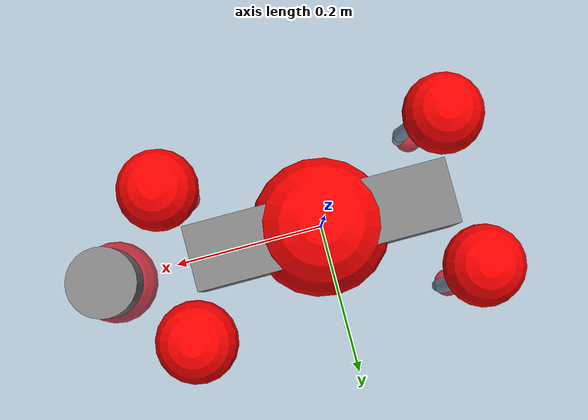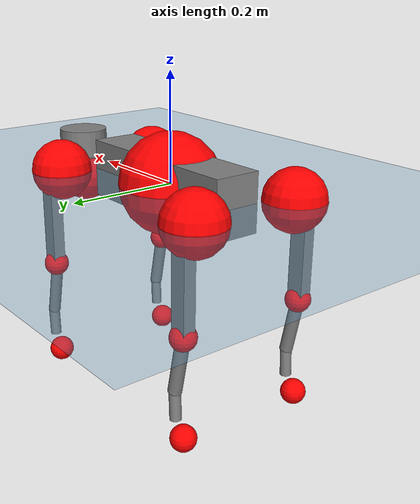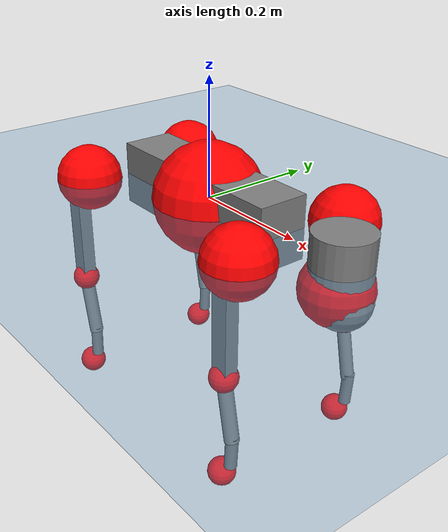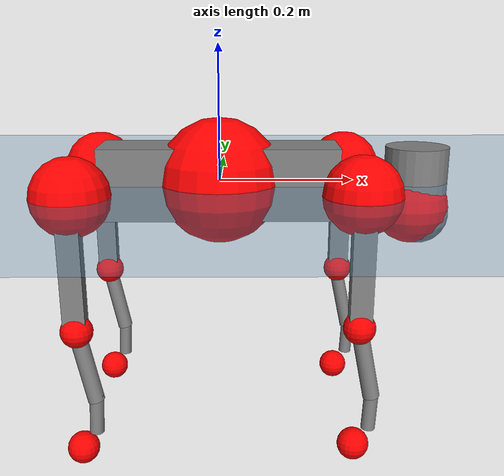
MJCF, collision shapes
<mujoco model="go2">
  <compiler angle="radian" assetdir="assets" balanceinertia="true" inertiafromgeom="false"/>

  <option timestep="0.005" density="1.2" viscosity="2e-05"/>

  <size nkey="1"/>

  <visual>
    <quality shadowsize="8192"/>
    <map shadowclip="0.5"/>
  </visual>

  <default>
    <default class="/">
      <geom contype="0" conaffinity="0" group="1" solref="-1000 -80"/>
      <site size="0.01 0.005 0.005" group="5"/>
      <general forcelimited="true" biastype="affine" gainprm="20" biasprm="0 -20 -0.5"/>
      <default class="go2">
        <joint armature="0.01" damping="0.01" frictionloss="0.2"/>
        <geom condim="1" margin="0.001"/>
        <default class="visual">
          <geom type="mesh" group="2"/>
        </default>
        <default class="collision">
          <geom group="3"/>
          <default class="foot">
            <geom size="0.022 0 0" condim="6" priority="1" friction="0.8 0.02 0.01" solimp="0.015 1 0.022"/>
          </default>
        </default>
        <default class="reward_collision_sphere">
          <geom group="5" rgba="1 0 0 1"/>
        </default>
      </default>
    </default>
  </default>

  <asset>
    <texture type="skybox" colorspace="auto" name="//unnamed_texture_0" builtin="gradient" rgb1="0.95 0.95 0.95" rgb2="0.95 0.95 0.95" width="100" height="600"/>
    <texture type="2d" colorspace="auto" name="texplane" builtin="checker" rgb1="0.345 0.575 0.748" rgb2="0.345 0.575 0.748" markrgb="1 1 1" width="512" height="512"/>
    <material name="MatPlane" class="/" texture="texplane" texuniform="true" texrepeat="2 2" specular="0.9"/>
    <material name="metal" class="/" rgba="0.9 0.95 0.95 1"/>
    <material name="black" class="/" rgba="0 0 0 1"/>
    <material name="white" class="/"/>
    <material name="gray" class="/" rgba="0.671705 0.692426 0.77427 1"/>
    <mesh name="base_0" class="/" file="base_0.obj"/>
    <mesh name="base_1" class="/" file="base_1.obj"/>
    <mesh name="base_2" class="/" file="base_2.obj"/>
    <mesh name="base_3" class="/" file="base_3.obj"/>
    <mesh name="base_4" class="/" file="base_4.obj"/>
    <mesh name="hip_0" class="/" file="hip_0.obj"/>
    <mesh name="hip_1" class="/" file="hip_1.obj"/>
    <mesh name="thigh_0" class="/" file="thigh_0.obj"/>
    <mesh name="thigh_1" class="/" file="thigh_1.obj"/>
    <mesh name="thigh_mirror_0" class="/" file="thigh_mirror_0.obj"/>
    <mesh name="thigh_mirror_1" class="/" file="thigh_mirror_1.obj"/>
    <mesh name="calf_0" class="/" file="calf_0.obj"/>
    <mesh name="calf_1" class="/" file="calf_1.obj"/>
    <mesh name="calf_mirror_0" class="/" file="calf_mirror_0.obj"/>
    <mesh name="calf_mirror_1" class="/" file="calf_mirror_1.obj"/>
    <mesh name="foot" class="/" file="foot.obj"/>
  </asset>

  <worldbody>
    <geom name="floor" class="/" size="100 100 0.125" type="plane" group="0" material="MatPlane"/>
    <light name="toplight_shadow" class="/" pos="0 0 5" dir="0.0990148 0.0990148 -0.990148" type="directional" ambient="0.04 0.04 0.04" diffuse="0.55 0.55 0.55" specular="0.12 0.12 0.12"/>
    <light name="toplight_fill" class="/" pos="0 0 5" dir="0.0990148 0.0990148 -0.990148" type="directional" castshadow="false" ambient="0.04 0.04 0.04" diffuse="0.3 0.3 0.3" specular="0.08 0.08 0.08"/>
    <body name="trunk" childclass="go2" pos="-1.13921e-06 -0.000234038 0.000310662" quat="1 -7.17388e-05 0.000226007 -4.91979e-05">
      <inertial pos="0.0216665 8.61292e-05 -0.00480585" quat="-0.00392312 0.714718 -0.00320578 0.699394" mass="5.71785" diaginertia="0.127761 0.0613641 0.0127385"/>
      <joint name="//unnamed_joint_0" type="free" armature="0" damping="0" frictionloss="0"/>
      <geom name="//unnamed_geom_1" class="visual" material="black" mesh="base_0"/>
      <geom name="//unnamed_geom_2" class="visual" material="black" mesh="base_1"/>
      <geom name="//unnamed_geom_3" class="visual" material="black" mesh="base_2"/>
      <geom name="//unnamed_geom_4" class="visual" material="white" mesh="base_3"/>
      <geom name="//unnamed_geom_5" class="visual" material="gray" mesh="base_4"/>
      <geom name="trunk_1" class="collision" size="0.177266 0.0440573 0.0537169" type="box"/>
      <geom name="trunk_2" class="collision" size="0.0471201 0.0424081" pos="0.295597 0 0.0087718" type="cylinder"/>
      <geom name="trunk_3" class="collision" size="0.0442929" pos="0.303895 0 -0.0526308"/>
      <geom name="//unnamed_geom_9" class="reward_collision_sphere" size="0.0942402"/>
      <geom name="//unnamed_geom_10" class="reward_collision_sphere" size="0.0565441" pos="0.290411 0 -0.0394731"/>
      <site name="imu" pos="-0.0245594 -0.000701063 0.0342123" size="0.00942402"/>
      <camera name="track" pos="0 -1.82569 0" quat="0.707107 0.707107 0 0" mode="trackcom"/>
      <camera name="ego_camera" pos="0.323601 0 0.0394731" quat="-0.5 -0.5 0.5 0.5"/>
      <body name="FL_hip" pos="0.199963 0.0432135 0.00119042" quat="1 1.56722e-05 3.67919e-05 -4.13058e-05">
        <inertial pos="-0.0056927 0.00221497 -0.000368416" quat="0.496992 0.499556 0.505035 0.498379" mass="0.564501" diaginertia="0.00105563 0.000381898 0.000249491"/>
        <joint name="FL_hip_joint" pos="0 0 0" axis="0.999942 -0.0105162 0.00222933" range="-1.04194 1.04942" armature="0.00917269" damping="0.00652623" frictionloss="0.181994"/>
        <geom name="//unnamed_geom_11" class="visual" material="metal" mesh="hip_0"/>
        <geom name="//unnamed_geom_12" class="visual" material="gray" mesh="hip_1"/>
        <geom name="//unnamed_geom_13" class="collision" size="0.0433505 0.018848" pos="0 0.0730275 0" quat="0.707107 0.707107 0 0" type="cylinder"/>
        <geom name="//unnamed_geom_14" class="reward_collision_sphere" size="0.0565441" pos="0 0.063899 0"/>
        <body name="FL_thigh" pos="0.00041248 0.0874211 0.00108182" quat="1 -0.000147404 -0.000323004 8.00106e-05">
          <inertial pos="-0.00392001 -0.0201416 -0.0292706" quat="0.830415 0.0839586 -0.0226053 0.550319" mass="0.960838" diaginertia="0.00714269 0.00369894 0.000455759"/>
          <joint name="FL_thigh_joint" pos="0 0 0" axis="0.00252637 0.999996 -0.000819634" stiffness="0.00210334" range="-1.57702 3.49108" armature="0.00922531" damping="0.0109235" frictionloss="0.196824"/>
          <geom name="//unnamed_geom_15" class="visual" material="metal" mesh="thigh_0"/>
          <geom name="//unnamed_geom_16" class="visual" material="gray" mesh="thigh_1"/>
          <geom name="//unnamed_geom_17" class="collision" size="0.100366 0.0115444 0.0160208" pos="0 0 -0.0934197" quat="0.707107 0 0.707107 0" type="box"/>
          <body name="FL_calf" pos="-0.000443567 -0.00104966 -0.186832" quat="1 2.97762e-05 -0.000421491 0.000142005">
            <inertial pos="0.00592501 -0.000974199 -0.123222" quat="0.711283 0.000131542 -0.00413796 0.702894" mass="0.197416" diaginertia="0.00178304 0.000915602 2.73894e-05"/>
            <joint name="FL_calf_joint" pos="0 0 0" axis="-0.00224309 0.999993 0.00300514" stiffness="0.00158218" range="-2.72652 -0.841767" armature="0.00941313" damping="0.00747957" frictionloss="0.186676"/>
            <geom name="//unnamed_geom_18" class="visual" material="gray" mesh="calf_0"/>
            <geom name="//unnamed_geom_19" class="visual" material="black" mesh="calf_1"/>
            <geom name="FL_calf0" class="collision" size="0.0113088 0.0565441" pos="0.00829746 0 -0.0526308" quat="0.994493 0 -0.104807 0" type="cylinder"/>
            <geom name="//unnamed_geom_21" class="collision" size="0.0103664 0.0306281" pos="0.0207437 0 -0.129823" quat="0.999688 0 0.0249974 0" type="cylinder"/>
            <geom name="//unnamed_geom_22" class="visual" pos="0 0 -0.186839" quat="1 0 0 0" material="black" mesh="foot"/>
            <geom name="FL_foot" class="foot" size="0.0166956" pos="-0.00207437 0 -0.186839"/>
            <geom name="//unnamed_geom_24" class="reward_collision_sphere" size="0.0235601"/>
            <geom name="//unnamed_geom_25" class="reward_collision_sphere" size="0.0235601" pos="-0.00207437 0 -0.186839"/>
            <site name="FL_foot" class="foot" pos="-0.00207437 0 -0.186839" size="0.00942402"/>
          </body>
        </body>
      </body>
      <body name="FR_hip" pos="0.200759 -0.0408918 -6.84952e-05" quat="1 -6.99072e-05 -1.92721e-05 5.817e-05">
        <inertial pos="-0.00460773 -0.00131072 -0.00135302" quat="0.500917 0.503 0.501102 0.494944" mass="0.572237" diaginertia="0.00107132 0.00038428 0.000250516"/>
        <joint name="FR_hip_joint" pos="0 0 0" axis="0.999996 -0.00260409 0.00145441" stiffness="0.00579785" range="-1.05567 1.04505" armature="0.00939967" damping="0.0139425" frictionloss="0.191862"/>
        <geom name="//unnamed_geom_26" class="visual" pos="0 3.10681e-10 1.33257e-08" quat="4.63268e-05 1 0 0" material="metal" mesh="hip_0"/>
        <geom name="//unnamed_geom_27" class="visual" pos="0 5.0365e-10 -3.29596e-08" quat="4.63268e-05 1 0 0" material="gray" mesh="hip_1"/>
        <geom name="//unnamed_geom_28" class="collision" size="0.0433505 0.018848" pos="0 -0.0730275 0" quat="0.707107 0.707107 0 0" type="cylinder"/>
        <geom name="//unnamed_geom_29" class="reward_collision_sphere" size="0.0565441" pos="0 -0.063899 0"/>
        <body name="FR_thigh" pos="0.000355521 -0.086601 -0.000258443" quat="1 -3.58349e-07 2.69435e-05 4.47652e-05">
          <inertial pos="-0.0030838 0.0215918 -0.028265" quat="0.551806 -0.0203628 0.0851883 0.82936" mass="0.965922" diaginertia="0.00710727 0.00372194 0.000456825"/>
          <joint name="FR_thigh_joint" pos="0 0 0" axis="-0.00478221 -0.999979 -0.00426604" range="-3.49235 1.55587" armature="0.00923806" damping="0.0138048" frictionloss="0.193028"/>
          <geom name="//unnamed_geom_30" class="visual" material="metal" mesh="thigh_mirror_0"/>
          <geom name="//unnamed_geom_31" class="visual" material="gray" mesh="thigh_mirror_1"/>
          <geom name="//unnamed_geom_32" class="collision" size="0.100366 0.0115444 0.0160208" pos="0 0 -0.0934197" quat="0.707107 0 0.707107 0" type="box"/>
          <body name="FR_calf" pos="-0.000404329 -0.00048375 -0.186862" quat="1 -9.27838e-05 -2.29371e-05 0.000343984">
            <inertial pos="0.00770829 0.00156263 -0.124769" quat="0.702836 -0.0058342 0.00281565 0.711322" mass="0.202183" diaginertia="0.00176578 0.000922198 2.77594e-05"/>
            <joint name="FR_calf_joint" pos="0 0 0" axis="0.000904376 -1 3.83142e-05" range="0.826108 2.72707" armature="0.00949411" damping="0.00957168" frictionloss="0.187608"/>
            <geom name="//unnamed_geom_33" class="visual" material="gray" mesh="calf_mirror_0"/>
            <geom name="//unnamed_geom_34" class="visual" material="black" mesh="calf_mirror_1"/>
            <geom name="FR_calf0" class="collision" size="0.0122512 0.0565441" pos="0.0103718 0 -0.0526308" quat="0.995004 0 -0.0998334 0" type="cylinder"/>
            <geom name="//unnamed_geom_36" class="collision" size="0.0103664 0.0306281" pos="0.0207437 0 -0.129823" quat="0.999688 0 0.0249974 0" type="cylinder"/>
            <geom name="//unnamed_geom_37" class="visual" pos="0 0 -0.186839" quat="1 0 0 0" material="black" mesh="foot"/>
            <geom name="FR_foot" class="foot" size="0.0220741" pos="-0.00207437 0 -0.186839"/>
            <geom name="//unnamed_geom_39" class="reward_collision_sphere" size="0.0235601"/>
            <geom name="//unnamed_geom_40" class="reward_collision_sphere" size="0.0235601" pos="-0.00207437 0 -0.186839"/>
            <site name="FR_foot" class="foot" pos="-0.00207437 0 -0.186839" size="0.00942402"/>
          </body>
        </body>
      </body>
      <body name="RL_hip" pos="-0.199472 0.0428661 0.000516174" quat="1 0.000227265 0.00032499 0.000225979">
        <inertial pos="0.00597039 0.00123732 1.06917e-05" quat="0.505521 0.497693 0.496934 0.499807" mass="0.573132" diaginertia="0.00105709 0.000378878 0.000250375"/>
        <joint name="RL_hip_joint" pos="0 0 0" axis="-0.999756 0.0219302 -0.00277134" stiffness="0.000472863" range="-1.06455 1.04573" armature="0.00943942" damping="0.0140212" frictionloss="0.188186"/>
        <geom name="//unnamed_geom_41" class="visual" pos="-1.39388e-09 0 -2.73232e-07" quat="4.63268e-05 0 1 0" material="metal" mesh="hip_0"/>
        <geom name="//unnamed_geom_42" class="visual" pos="-2.25964e-09 0 -2.42318e-07" quat="4.63268e-05 0 1 0" material="gray" mesh="hip_1"/>
        <geom name="//unnamed_geom_43" class="collision" size="0.0433505 0.018848" pos="0 0.0730275 0" quat="0.707107 0.707107 0 0" type="cylinder"/>
        <geom name="//unnamed_geom_44" class="reward_collision_sphere" size="0.0565441" pos="0 0.063899 0"/>
        <body name="RL_thigh" pos="-0.00112288 0.0858989 0.00116296" quat="1 -5.61631e-05 -5.33131e-05 -3.72406e-05">
          <inertial pos="-0.00326265 -0.0195203 -0.0290643" quat="0.829411 0.0864164 -0.0174088 0.55164" mass="0.960639" diaginertia="0.00714826 0.0036523 0.000446748"/>
          <joint name="RL_thigh_joint" pos="0 0 0" axis="-0.00131199 0.999999 -0.000360079" range="-0.539787 4.51997" armature="0.00953012" damping="0.00880363" frictionloss="0.185716"/>
          <geom name="//unnamed_geom_45" class="visual" material="metal" mesh="thigh_0"/>
          <geom name="//unnamed_geom_46" class="visual" material="gray" mesh="thigh_1"/>
          <geom name="//unnamed_geom_47" class="collision" size="0.100366 0.0115444 0.0160208" pos="0 0 -0.0934197" quat="0.707107 0 0.707107 0" type="box"/>
          <body name="RL_calf" pos="0.000984941 -0.00128552 -0.187589" quat="1 0.000331074 -0.000107068 4.55563e-05">
            <inertial pos="0.0062589 -0.00046638 -0.122739" quat="0.713379 0.00319842 -0.00424409 0.700758" mass="0.201558" diaginertia="0.00178605 0.000933897 2.76167e-05"/>
            <joint name="RL_calf_joint" pos="0 0 0" axis="0.000820901 0.99999 -0.00433185" stiffness="0.00443918" range="-2.71078 -0.819549" armature="0.00967185" damping="0" frictionloss="0.194241"/>
            <geom name="//unnamed_geom_48" class="visual" material="gray" mesh="calf_0"/>
            <geom name="//unnamed_geom_49" class="visual" material="black" mesh="calf_1"/>
            <geom name="RL_calf0" class="collision" size="0.0122512 0.0565441" pos="0.0103718 0 -0.0526308" quat="0.995004 0 -0.0998334 0" type="cylinder"/>
            <geom name="//unnamed_geom_51" class="collision" size="0.0103664 0.0306281" pos="0.0207437 0 -0.129823" quat="0.999688 0 0.0249974 0" type="cylinder"/>
            <geom name="//unnamed_geom_52" class="visual" pos="0 0 -0.186839" quat="1 0 0 0" material="black" mesh="foot"/>
            <geom name="RL_foot" class="foot" size="0.0181798" pos="-0.00207437 0 -0.186839"/>
            <geom name="//unnamed_geom_54" class="reward_collision_sphere" size="0.0235601"/>
            <geom name="//unnamed_geom_55" class="reward_collision_sphere" size="0.0235601" pos="-0.00207437 0 -0.186839"/>
            <site name="RL_foot" class="foot" pos="-0.00207437 0 -0.186839" size="0.00942402"/>
          </body>
        </body>
      </body>
      <body name="RR_hip" pos="-0.201411 -0.0431384 -0.00171274" quat="1 2.22503e-05 1.83911e-05 8.29734e-06">
        <inertial pos="0.0046303 -0.00250114 0.000292293" quat="0.499888 0.496927 0.499706 0.503458" mass="0.56436" diaginertia="0.00104372 0.000371557 0.000245112"/>
        <joint name="RR_hip_joint" pos="0 0 0" axis="-0.99999 0.00196148 -0.00389962" range="-1.04502 1.05185" armature="0.00937517" damping="0.00397476" frictionloss="0.19028"/>
        <geom name="//unnamed_geom_56" class="visual" pos="1.38957e-09 3.10681e-10 -2.86558e-07" quat="2.14617e-09 4.63268e-05 4.63268e-05 -1" material="metal" mesh="hip_0"/>
        <geom name="//unnamed_geom_57" class="visual" pos="2.27029e-09 5.0365e-10 -2.09358e-07" quat="2.14617e-09 4.63268e-05 4.63268e-05 -1" material="gray" mesh="hip_1"/>
        <geom name="//unnamed_geom_58" class="collision" size="0.0433505 0.018848" pos="0 -0.0730275 0" quat="0.707107 0.707107 0 0" type="cylinder"/>
        <geom name="//unnamed_geom_59" class="reward_collision_sphere" size="0.0565441" pos="0 -0.063899 0"/>
        <body name="RR_thigh" pos="0.000267351 -0.0878001 -0.00111763" quat="1 -4.34438e-05 -9.43794e-06 -2.50034e-05">
          <inertial pos="-0.00320825 0.02072 -0.0284832" quat="0.547976 -0.0183568 0.0842769 0.832035" mass="0.960682" diaginertia="0.00717243 0.00369368 0.000463192"/>
          <joint name="RR_thigh_joint" pos="0 0 0" axis="-0.000781609 -0.999997 -0.00233736" stiffness="0.00181691" range="-4.53996 0.523933" armature="0.00928461" damping="0.0159995" frictionloss="0.195327"/>
          <geom name="//unnamed_geom_60" class="visual" material="metal" mesh="thigh_mirror_0"/>
          <geom name="//unnamed_geom_61" class="visual" material="gray" mesh="thigh_mirror_1"/>
          <geom name="//unnamed_geom_62" class="collision" size="0.100366 0.0115444 0.0160208" pos="0 0 -0.0934197" quat="0.707107 0 0.707107 0" type="box"/>
          <body name="RR_calf" pos="0.0010151 -0.000611607 -0.187571" quat="1 -7.85997e-06 4.36584e-05 -5.37564e-06">
            <inertial pos="0.00639844 -0.000119814 -0.123767" quat="0.702989 -0.00351811 0.00241077 0.711188" mass="0.201708" diaginertia="0.00181259 0.000927589 2.76658e-05"/>
            <joint name="RR_calf_joint" pos="0 0 0" axis="0.0025272 -0.999996 -0.00153697" range="0.83682 2.73511" armature="0.00942362" damping="0.00941398" frictionloss="0.19311"/>
            <geom name="//unnamed_geom_63" class="visual" material="gray" mesh="calf_mirror_0"/>
            <geom name="//unnamed_geom_64" class="visual" material="black" mesh="calf_mirror_1"/>
            <geom name="RR_calf0" class="collision" size="0.0122512 0.0565441" pos="0.0103718 0 -0.0526308" quat="0.995004 0 -0.0998334 0" type="cylinder"/>
            <geom name="//unnamed_geom_66" class="collision" size="0.0103664 0.0306281" pos="0.0207437 0 -0.129823" quat="0.999688 0 0.0249974 0" type="cylinder"/>
            <geom name="//unnamed_geom_67" class="visual" pos="0 0 -0.186839" quat="1 0 0 0" material="black" mesh="foot"/>
            <geom name="RR_foot" class="foot" size="0.021895" pos="-0.00207437 0 -0.186839"/>
            <geom name="//unnamed_geom_69" class="reward_collision_sphere" size="0.0235601"/>
            <geom name="//unnamed_geom_70" class="reward_collision_sphere" size="0.0235601" pos="-0.00207437 0 -0.186839"/>
            <site name="RR_foot" class="foot" pos="-0.00207437 0 -0.186839" size="0.00942402"/>
          </body>
        </body>
      </body>
    </body>
  </worldbody>

  <contact>
    <pair class="/" geom1="floor" geom2="FL_foot" name="//unnamed_contact_0"/>
    <pair class="/" geom1="floor" geom2="FR_foot" name="//unnamed_contact_1"/>
    <pair class="/" geom1="floor" geom2="RL_foot" name="//unnamed_contact_2"/>
    <pair class="/" geom1="floor" geom2="RR_foot" name="//unnamed_contact_3"/>
  </contact>

  <actuator>
    <general name="FL_hip" class="/" joint="FL_hip_joint" forcerange="-22.3522 22.3522" gainprm="18.8973" biasprm="0 -18.8973 -0.477079"/>
    <general name="FL_thigh" class="/" joint="FL_thigh_joint" forcerange="-22.621 22.621" gainprm="18.8973" biasprm="0 -18.8973 -0.477079"/>
    <general name="FL_calf" class="/" joint="FL_calf_joint" forcerange="-41.4513 41.4513" gainprm="18.8973" biasprm="0 -18.8973 -0.477079"/>
    <general name="FR_hip" class="/" joint="FR_hip_joint" forcerange="-22.2717 22.2717" gainprm="18.8973" biasprm="0 -18.8973 -0.477079"/>
    <general name="FR_thigh" class="/" joint="FR_thigh_joint" forcerange="-22.1998 22.1998" gainprm="18.8973" biasprm="0 -18.8973 -0.477079"/>
    <general name="FR_calf" class="/" joint="FR_calf_joint" forcerange="-41.3336 41.3336" gainprm="18.8973" biasprm="0 -18.8973 -0.477079"/>
    <general name="RL_hip" class="/" joint="RL_hip_joint" forcerange="-22.4095 22.4095" gainprm="18.8973" biasprm="0 -18.8973 -0.477079"/>
    <general name="RL_thigh" class="/" joint="RL_thigh_joint" forcerange="-21.6223 21.6223" gainprm="18.8973" biasprm="0 -18.8973 -0.477079"/>
    <general name="RL_calf" class="/" joint="RL_calf_joint" forcerange="-43.7997 43.7997" gainprm="18.8973" biasprm="0 -18.8973 -0.477079"/>
    <general name="RR_hip" class="/" joint="RR_hip_joint" forcerange="-22.6091 22.6091" gainprm="18.8973" biasprm="0 -18.8973 -0.477079"/>
    <general name="RR_thigh" class="/" joint="RR_thigh_joint" forcerange="-22.5696 22.5696" gainprm="18.8973" biasprm="0 -18.8973 -0.477079"/>
    <general name="RR_calf" class="/" joint="RR_calf_joint" forcerange="-41.3874 41.3874" gainprm="18.8973" biasprm="0 -18.8973 -0.477079"/>
  </actuator>

  <sensor>
    <gyro site="imu" name="imu_angular_velocity"/>
    <velocimeter site="imu" name="imu_linear_velocity"/>
    <framelinvel objtype="site" objname="FL_foot" name="FL_foot_global_linear_velocity"/>
    <framelinvel objtype="site" objname="FR_foot" name="FR_foot_global_linear_velocity"/>
    <framelinvel objtype="site" objname="RL_foot" name="RL_foot_global_linear_velocity"/>
    <framelinvel objtype="site" objname="RR_foot" name="RR_foot_global_linear_velocity"/>
  </sensor>

  <keyframe>
    <key name="home" qpos="0 0 0.325 1 0 0 0 0.1 0.8 -1.5 -0.1 -0.8 1.5 -0.1 0.8 -1.5 0.1 -0.8 1.5"/>
  </keyframe>
</mujoco>
